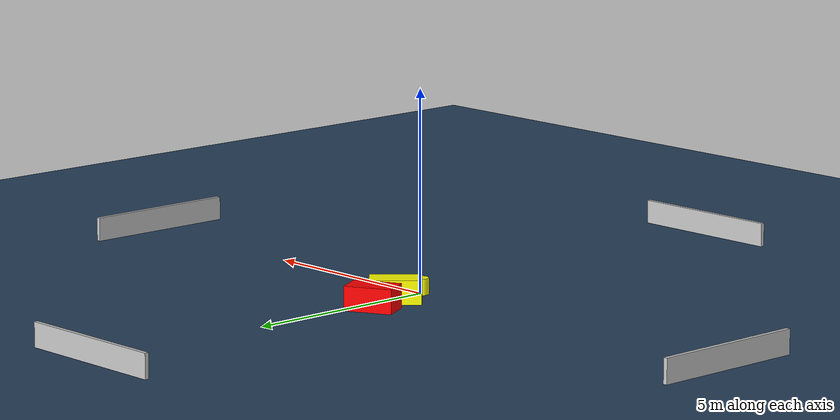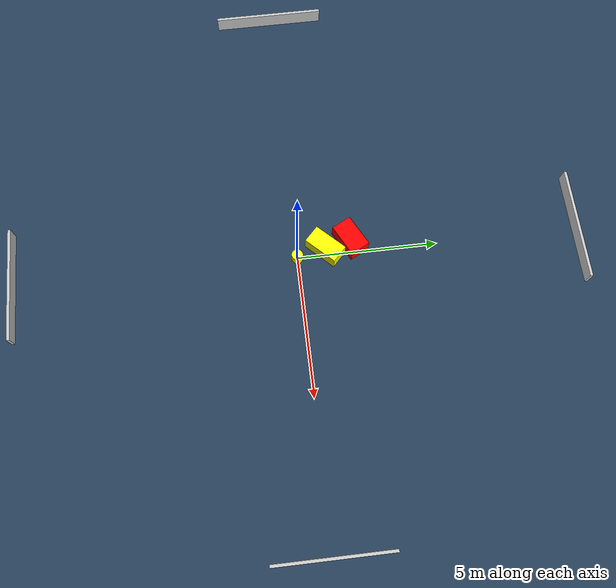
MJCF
<?xml version="1.0" ?>
<mujoco model="generated_environment">
  <option timestep="0.01" integrator="RK4" cone="elliptic"/>
  <default>
    <geom density="1"/>
  </default>
  <asset>
    <texture builtin="gradient" height="3072" name="skybox" rgb1="0.3 0.5 0.7" rgb2="0 0 0" type="skybox" width="512"/>
    <texture builtin="checker" height="300" name="groundplane" rgb1="0.2 0.3 0.4" rgb2="0.1 0.2 0.3" type="2d" width="300"/>
    <material name="groundplane" reflectance="0.2" texrepeat="5 5" texture="groundplane"/>
  </asset>
  <worldbody>
    <light dir="0 0 -1" directional="true" pos="0 0 1.5"/>
    <geom condim="3" friction="0.5 0.005 0.001" material="groundplane" name="floor" pos="0 0 0" size="0 0 0.05" type="plane"/>
    <body name="walls">
      <geom name="wall_1" condim="4" pos="-10.0 0.0 0.3" rgba="0.800000011920929 0.800000011920929 0.800000011920929 1.0" size="0.05 2.0 0.3" type="box"/>
      <geom name="wall_2" condim="4" pos="10.0 0.0 0.3" rgba="0.800000011920929 0.800000011920929 0.800000011920929 1.0" size="0.05 2.0 0.3" type="box"/>
      <geom name="wall_3" condim="4" pos="0.0 -10.0 0.3" rgba="0.800000011920929 0.800000011920929 0.800000011920929 1.0" size="2.0 0.05 0.3" type="box"/>
      <geom name="wall_4" condim="4" pos="0.0 10.0 0.3" rgba="0.800000011920929 0.800000011920929 0.800000011920929 1.0" size="2.0 0.05 0.3" type="box"/>
    </body>
    <body name="robot">
      <joint name="joint_x" type="slide" pos="0 0 0" axis="1 0 0"/>
      <joint name="joint_y" type="slide" pos="0 0 0" axis="0 1 0"/>
      <geom name="robot" type="cylinder" pos="0.0 0.0 0.2" size="0.2 0.2 0.0" mass="5.0" friction="1.0 0.005 0.0001" condim="4" rgba="1.0 1.0 0.0 1.0"/>
    </body>
    <body name="obstacle_1_movable">
      <geom name="obstacle_1_movable" condim="4" pos="-0.2205538368583361 1.0190144548965856 0.3" euler="0 0 136.03892939361594" friction="0.0 0.005 0.001" rgba="1.0 1.0 0.0 1.0" size="0.33347339988096636 0.6319742067720375 0.3" type="box" mass="0.1"/>
      <joint type="free"/>
    </body>
    <body name="obstacle_2_static">
      <geom name="obstacle_2_static" condim="4" pos="-0.43190975326858405 1.9408888257702306 0.3" euler="0 0 207.87658841760552" friction="0.0 0.005 0.001" rgba="1.0 0.0 0.0 1.0" size="0.5964728343851995 0.3654815241555899 0.3" type="box"/>
    </body>
  </worldbody>
  <actuator>
    <motor name="actuator_x" joint="joint_x" gear="1" ctrlrange="-1 1"/>
    <motor name="actuator_y" joint="joint_y" gear="1" ctrlrange="-1 1"/>
  </actuator>
</mujoco>
